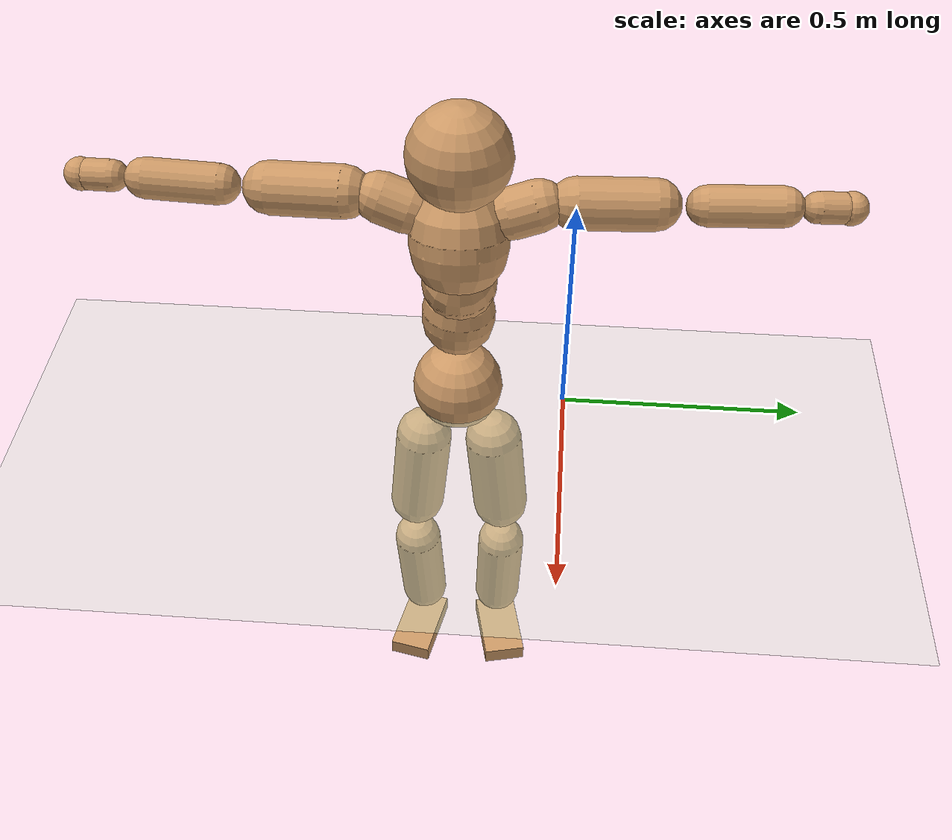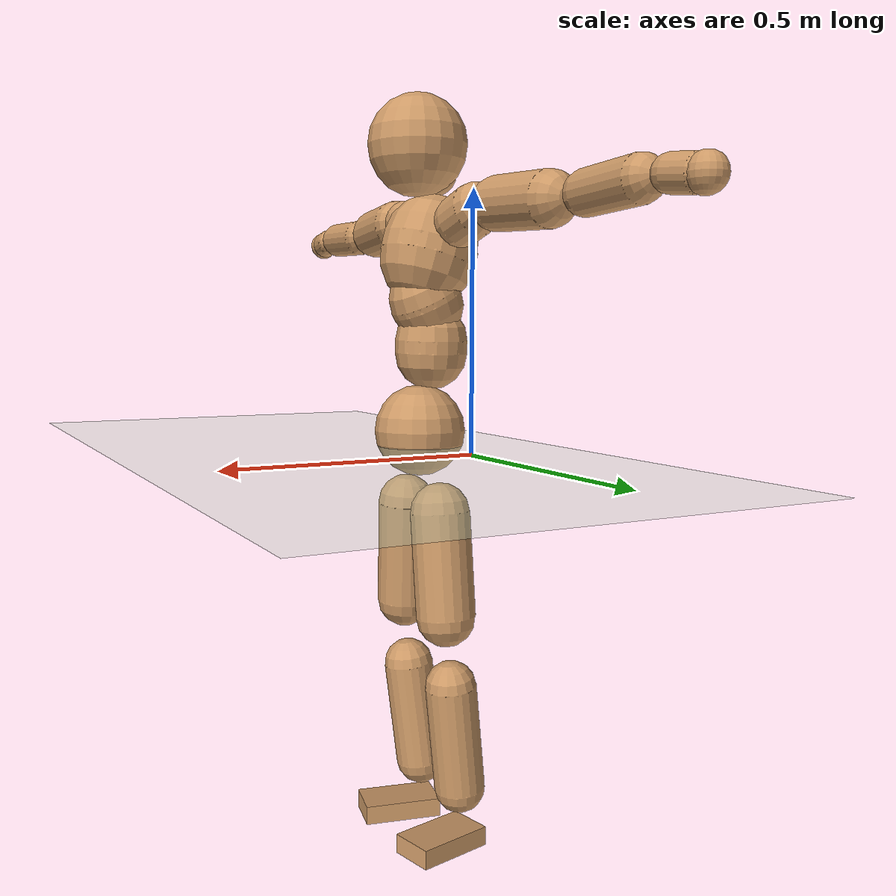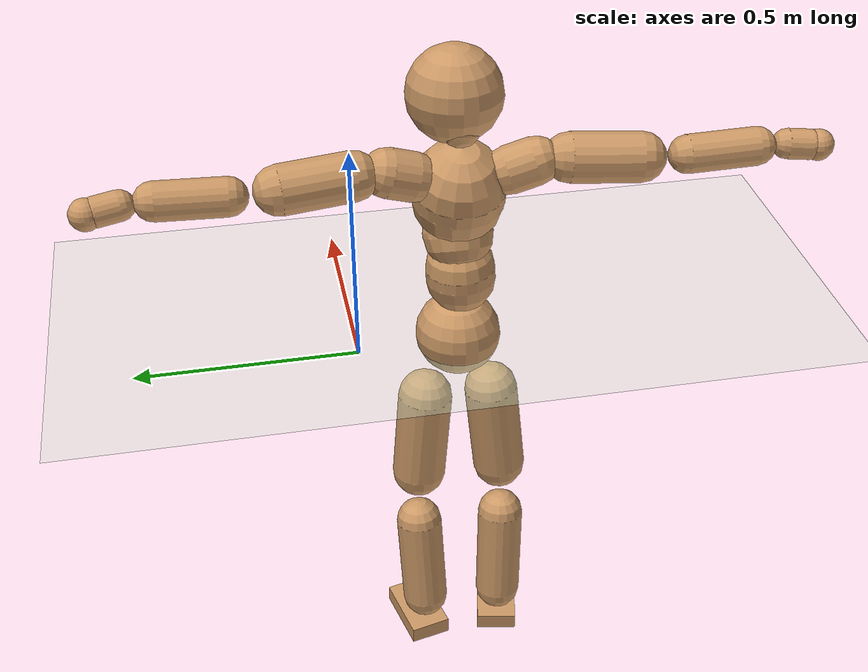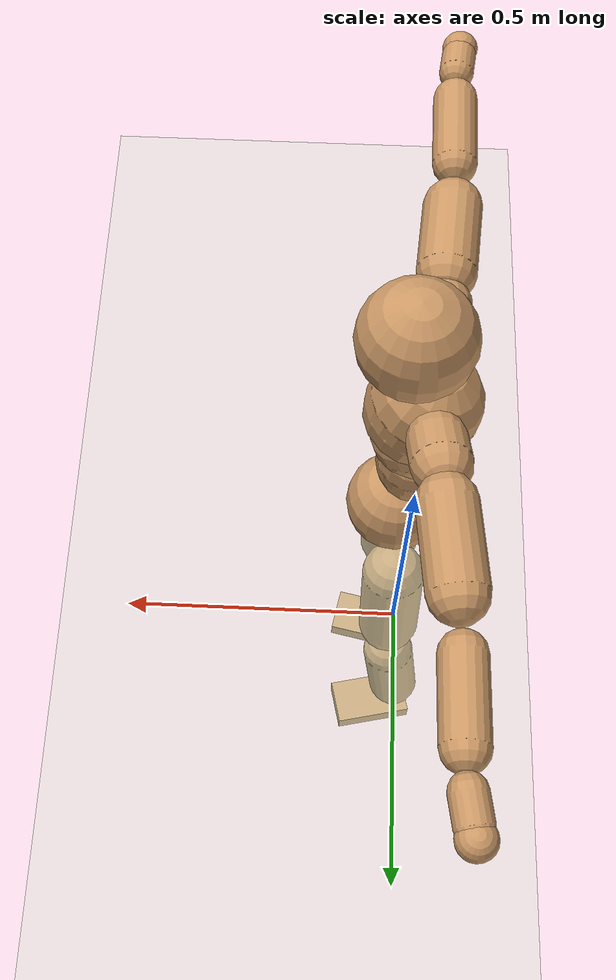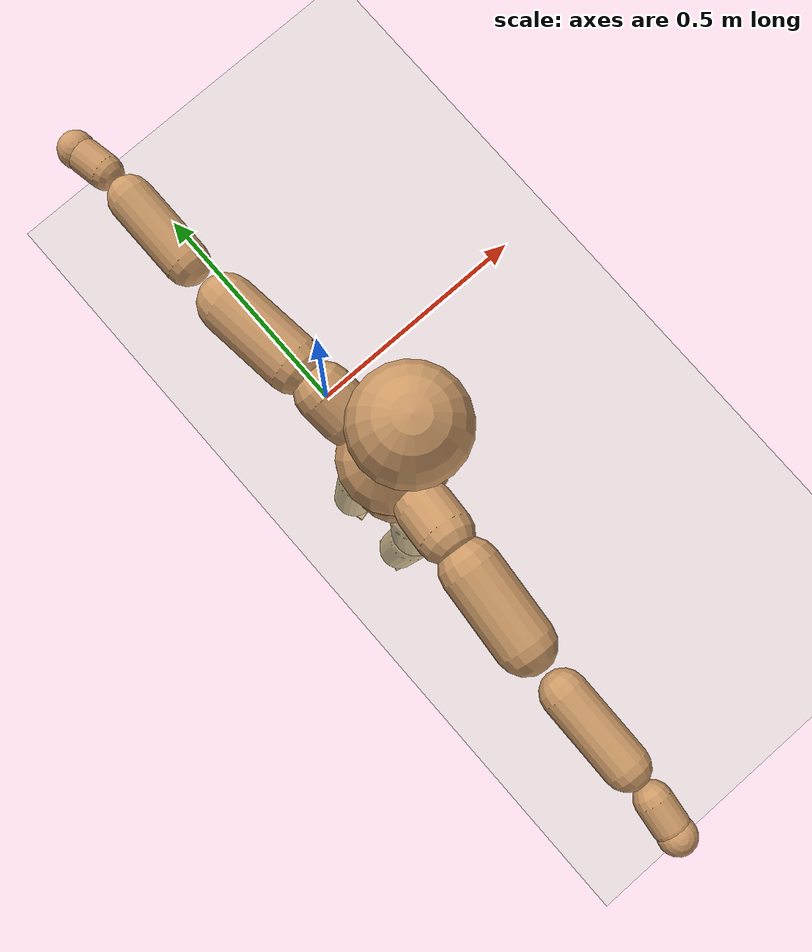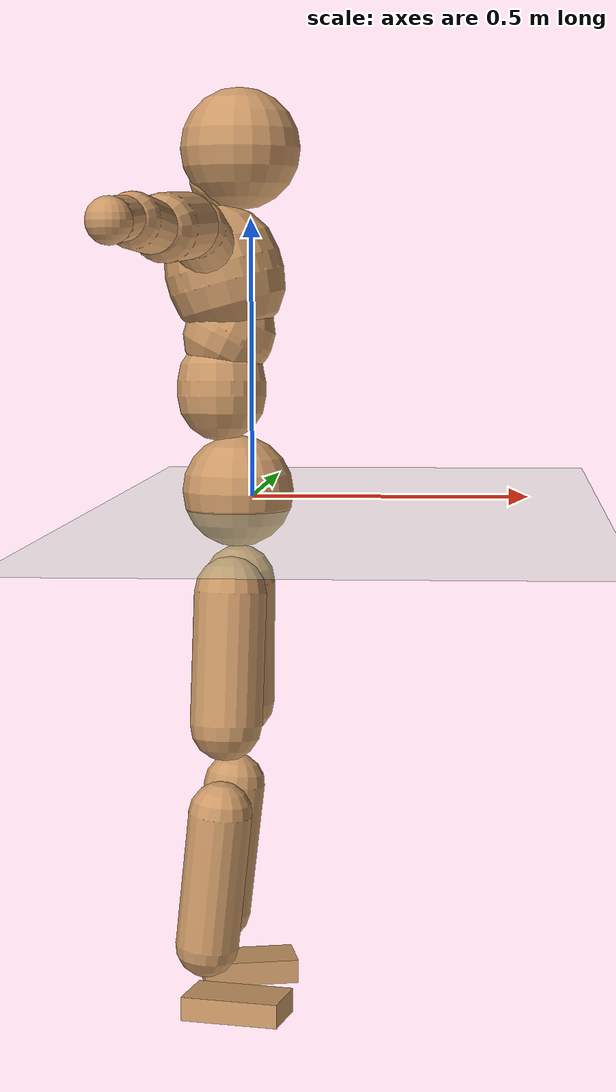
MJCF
<mujoco model="humanoid">
  <compiler coordinate="local"/>
  <default>
    <joint damping="0.0" armature="0.01" stiffness="0.0" limited="true"/>
    <geom conaffinity="1" condim="3" contype="7" margin="0.001" rgba="0.8 0.6 .4 1"/>
  </default>
  <asset>
    <texture type="skybox" builtin="gradient" rgb1=".4 .5 .6" rgb2="0 0 0" width="100" height="100"/>
    <texture builtin="flat" height="1278" mark="cross" markrgb="1 1 1" name="texgeom" random="0.01" rgb1="0.8 0.6 0.4" rgb2="0.8 0.6 0.4" type="cube" width="127"/>
    <texture builtin="checker" height="100" name="texplane" rgb1="0 0 0" rgb2="0.8 0.8 0.8" type="2d" width="100"/>
    <material name="MatPlane" reflectance="0.5" shininess="1" specular="1" texrepeat="60 60" texture="texplane"/>
    <material name="geom" texture="texgeom" texuniform="true"/>
  </asset>
  <worldbody>
    <light cutoff="100" diffuse="1 1 1" dir="-0 0 -1.3" directional="true" exponent="1" pos="0 0 1.3" specular=".1 .1 .1"/>
    <geom conaffinity="1" condim="3" name="floor" pos="0 0 0" rgba="0.8 0.9 0.8 1" size="100 100 .2" type="plane" material="MatPlane"/>
    <body name="Pelvis" pos="-0.0013 -0.2263 0.0299">
      <freejoint name="Pelvis"/>
      <geom type="sphere" contype="1" conaffinity="1" density="500" size="0.0959" pos="0.0000 0.0000 0.0000" name="Pelvis"/>
      <body name="L_Hip" pos="-0.0059 0.0718 -0.0915">
        <joint name="L_Hip_x" type="hinge" pos="0 0 0" axis="1 0 0" stiffness="800" damping="80" armature="0.02" range="-180.0000 180.0000"/>
        <joint name="L_Hip_y" type="hinge" pos="0 0 0" axis="0 1 0" stiffness="800" damping="80" armature="0.02" range="-180.0000 180.0000"/>
        <joint name="L_Hip_z" type="hinge" pos="0 0 0" axis="0 0 1" stiffness="800" damping="80" armature="0.02" range="-180.0000 180.0000"/>
        <geom type="capsule" contype="1" conaffinity="1" density="500" fromto="-0.0014 0.0063 -0.0733 -0.0056 0.0254 -0.2934" size="0.0623" name="L_Hip"/>
        <body name="L_Knee" pos="-0.007 0.0317 -0.3667">
          <joint name="L_Knee_x" type="hinge" pos="0 0 0" axis="1 0 0" stiffness="800" damping="80" armature="0.02" range="-180.0000 180.0000"/>
          <joint name="L_Knee_y" type="hinge" pos="0 0 0" axis="0 1 0" stiffness="800" damping="80" armature="0.02" range="-180.0000 180.0000"/>
          <joint name="L_Knee_z" type="hinge" pos="0 0 0" axis="0 0 1" stiffness="800" damping="80" armature="0.02" range="-180.0000 180.0000"/>
          <geom type="capsule" contype="1" conaffinity="1" density="500" fromto="-0.0088 -0.0026 -0.0776 -0.0353 -0.0103 -0.3105" size="0.0545" name="L_Knee"/>
          <body name="L_Ankle" pos="-0.0441 -0.0129 -0.3882">
            <joint name="L_Ankle_x" type="hinge" pos="0 0 0" axis="1 0 0" stiffness="800" damping="80" armature="0.02" range="-180.0000 180.0000"/>
            <joint name="L_Ankle_y" type="hinge" pos="0 0 0" axis="0 1 0" stiffness="800" damping="80" armature="0.02" range="-180.0000 180.0000"/>
            <joint name="L_Ankle_z" type="hinge" pos="0 0 0" axis="0 0 1" stiffness="800" damping="80" armature="0.02" range="-180.0000 180.0000"/>
            <geom type="box" contype="1" conaffinity="1" density="500" pos="0.0588 0.0134 -0.0277" size="0.084 0.0487 0.0207" quat="0.9938 0.0000 0.0000 0.1115" name="L_Ankle"/>
            <body name="L_Toe" pos="0.1176 0.0267 -0.0554">
              <joint name="L_Toe_x" type="hinge" pos="0 0 0" axis="1 0 0" stiffness="500" damping="50" armature="0.02" range="-180.0000 180.0000"/>
              <joint name="L_Toe_y" type="hinge" pos="0 0 0" axis="0 1 0" stiffness="500" damping="50" armature="0.02" range="-180.0000 180.0000"/>
              <joint name="L_Toe_z" type="hinge" pos="0 0 0" axis="0 0 1" stiffness="500" damping="50" armature="0.02" range="-180.0000 180.0000"/>
              <geom type="box" contype="1" conaffinity="1" density="500" pos="0.0000 0.0000 0.0271" size="0.001 0.0024 0.001" quat="0.9931 0.0000 0.0000 0.1176" name="L_Toe"/>
            </body>
          </body>
        </body>
      </body>
      <body name="R_Hip" pos="-0.0034 -0.0698 -0.0908">
        <joint name="R_Hip_x" type="hinge" pos="0 0 0" axis="1 0 0" stiffness="800" damping="80" armature="0.02" range="-180.0000 180.0000"/>
        <joint name="R_Hip_y" type="hinge" pos="0 0 0" axis="0 1 0" stiffness="800" damping="80" armature="0.02" range="-180.0000 180.0000"/>
        <joint name="R_Hip_z" type="hinge" pos="0 0 0" axis="0 0 1" stiffness="800" damping="80" armature="0.02" range="-180.0000 180.0000"/>
        <geom type="capsule" contype="1" conaffinity="1" density="500" fromto="-0.0021 -0.0073 -0.0747 -0.0084 -0.0291 -0.2989" size="0.0614" name="R_Hip"/>
        <body name="R_Knee" pos="-0.0105 -0.0364 -0.3736">
          <joint name="R_Knee_x" type="hinge" pos="0 0 0" axis="1 0 0" stiffness="800" damping="80" armature="0.02" range="-180.0000 180.0000"/>
          <joint name="R_Knee_y" type="hinge" pos="0 0 0" axis="0 1 0" stiffness="800" damping="80" armature="0.02" range="-180.0000 180.0000"/>
          <joint name="R_Knee_z" type="hinge" pos="0 0 0" axis="0 0 1" stiffness="800" damping="80" armature="0.02" range="-180.0000 180.0000"/>
          <geom type="capsule" contype="1" conaffinity="1" density="500" fromto="-0.0086 0.0030 -0.0778 -0.0343 0.0120 -0.3113" size="0.0546" name="R_Knee"/>
          <body name="R_Ankle" pos="-0.0429 0.015 -0.3891">
            <joint name="R_Ankle_x" type="hinge" pos="0 0 0" axis="1 0 0" stiffness="800" damping="80" armature="0.02" range="-180.0000 180.0000"/>
            <joint name="R_Ankle_y" type="hinge" pos="0 0 0" axis="0 1 0" stiffness="800" damping="80" armature="0.02" range="-180.0000 180.0000"/>
            <joint name="R_Ankle_z" type="hinge" pos="0 0 0" axis="0 0 1" stiffness="800" damping="80" armature="0.02" range="-180.0000 180.0000"/>
            <geom type="box" contype="1" conaffinity="1" density="500" pos="0.0609 -0.0127 -0.0238" size="0.0855 0.0483 0.0207" quat="0.9947 0.0000 0.0000 -0.1029" name="R_Ankle"/>
            <body name="R_Toe" pos="0.1218 -0.0255 -0.0476">
              <joint name="R_Toe_x" type="hinge" pos="0 0 0" axis="1 0 0" stiffness="500" damping="50" armature="0.02" range="-180.0000 180.0000"/>
              <joint name="R_Toe_y" type="hinge" pos="0 0 0" axis="0 1 0" stiffness="500" damping="50" armature="0.02" range="-180.0000 180.0000"/>
              <joint name="R_Toe_z" type="hinge" pos="0 0 0" axis="0 0 1" stiffness="500" damping="50" armature="0.02" range="-180.0000 180.0000"/>
              <geom type="box" contype="1" conaffinity="1" density="500" pos="0.0000 0.0000 0.0249" size="0.001 0.0024 0.0011" quat="0.9956 0.0000 0.0000 -0.0935" name="R_Toe"/>
            </body>
          </body>
        </body>
      </body>
      <body name="Torso" pos="-0.0272 -0.0025 0.1081">
        <joint name="Torso_x" type="hinge" pos="0 0 0" axis="1 0 0" stiffness="1000" damping="100" armature="0.02" range="-180.0000 180.0000"/>
        <joint name="Torso_y" type="hinge" pos="0 0 0" axis="0 1 0" stiffness="1000" damping="100" armature="0.02" range="-180.0000 180.0000"/>
        <joint name="Torso_z" type="hinge" pos="0 0 0" axis="0 0 1" stiffness="1000" damping="100" armature="0.02" range="-180.0000 180.0000"/>
        <geom type="capsule" contype="1" conaffinity="1" density="500" fromto="0.0001 0.0031 0.0799 0.0001 0.0020 0.0533" size="0.0761" name="Torso"/>
        <body name="Spine" pos="0.0002 0.0051 0.1331">
          <joint name="Spine_x" type="hinge" pos="0 0 0" axis="1 0 0" stiffness="1000" damping="100" armature="0.02" range="-180.0000 180.0000"/>
          <joint name="Spine_y" type="hinge" pos="0 0 0" axis="0 1 0" stiffness="1000" damping="100" armature="0.02" range="-180.0000 180.0000"/>
          <joint name="Spine_z" type="hinge" pos="0 0 0" axis="0 0 1" stiffness="1000" damping="100" armature="0.02" range="-180.0000 180.0000"/>
          <geom type="capsule" contype="1" conaffinity="1" density="500" fromto="0.0162 0.0008 0.0319 0.0108 0.0005 0.0213" size="0.0764" name="Spine"/>
          <body name="Chest" pos="0.0271 0.0014 0.0531">
            <joint name="Chest_x" type="hinge" pos="0 0 0" axis="1 0 0" stiffness="1000" damping="100" armature="0.02" range="-180.0000 180.0000"/>
            <joint name="Chest_y" type="hinge" pos="0 0 0" axis="0 1 0" stiffness="1000" damping="100" armature="0.02" range="-180.0000 180.0000"/>
            <joint name="Chest_z" type="hinge" pos="0 0 0" axis="0 0 1" stiffness="1000" damping="100" armature="0.02" range="-180.0000 180.0000"/>
            <geom type="capsule" contype="1" conaffinity="1" density="500" fromto="-0.0250 -0.0011 0.0926 -0.0166 -0.0007 0.0617" size="0.1" name="Chest"/>
            <body name="Neck" pos="-0.0463 -0.0025 0.2187">
              <joint name="Neck_x" type="hinge" pos="0 0 0" axis="1 0 0" stiffness="500" damping="50" armature="0.02" range="-180.0000 180.0000"/>
              <joint name="Neck_y" type="hinge" pos="0 0 0" axis="0 1 0" stiffness="500" damping="50" armature="0.02" range="-180.0000 180.0000"/>
              <joint name="Neck_z" type="hinge" pos="0 0 0" axis="0 0 1" stiffness="500" damping="50" armature="0.02" range="-180.0000 180.0000"/>
              <geom type="capsule" contype="1" conaffinity="1" density="500" fromto="0.0107 0.0009 0.0134 0.0426 0.0037 0.0536" size="0.0438" name="Neck"/>
              <body name="Head" pos="0.0533 0.0046 0.067">
                <joint name="Head_x" type="hinge" pos="0 0 0" axis="1 0 0" stiffness="500" damping="50" armature="0.02" range="-180.0000 180.0000"/>
                <joint name="Head_y" type="hinge" pos="0 0 0" axis="0 1 0" stiffness="500" damping="50" armature="0.02" range="-180.0000 180.0000"/>
                <joint name="Head_z" type="hinge" pos="0 0 0" axis="0 0 1" stiffness="500" damping="50" armature="0.02" range="-180.0000 180.0000"/>
                <geom type="sphere" contype="1" conaffinity="1" density="500" size="0.1024" pos="0.0000 0.0000 0.0000" name="Head"/>
              </body>
            </body>
            <body name="L_Thorax" pos="-0.0368 0.0791 0.1234">
              <joint name="L_Thorax_x" type="hinge" pos="0 0 0" axis="1 0 0" stiffness="500" damping="50" armature="0.02" range="-180.0000 180.0000"/>
              <joint name="L_Thorax_y" type="hinge" pos="0 0 0" axis="0 1 0" stiffness="500" damping="50" armature="0.02" range="-180.0000 180.0000"/>
              <joint name="L_Thorax_z" type="hinge" pos="0 0 0" axis="0 0 1" stiffness="500" damping="50" armature="0.02" range="-180.0000 180.0000"/>
              <geom type="capsule" contype="1" conaffinity="1" density="500" fromto="-0.0019 0.0181 0.0060 -0.0075 0.0725 0.0240" size="0.0526" name="L_Thorax"/>
              <body name="L_Shoulder" pos="-0.0094 0.0907 0.03">
                <joint name="L_Shoulder_x" type="hinge" pos="0 0 0" axis="1 0 0" stiffness="500" damping="50" armature="0.02" range="-720.0000 720.0000"/>
                <joint name="L_Shoulder_y" type="hinge" pos="0 0 0" axis="0 1 0" stiffness="500" damping="50" armature="0.02" range="-720.0000 720.0000"/>
                <joint name="L_Shoulder_z" type="hinge" pos="0 0 0" axis="0 0 1" stiffness="500" damping="50" armature="0.02" range="-720.0000 720.0000"/>
                <geom type="capsule" contype="1" conaffinity="1" density="500" fromto="-0.0055 0.0510 -0.0023 -0.0218 0.2042 -0.0091" size="0.0525" name="L_Shoulder"/>
                <body name="L_Elbow" pos="-0.0273 0.2552 -0.0113">
                  <joint name="L_Elbow_x" type="hinge" pos="0 0 0" axis="1 0 0" stiffness="500" damping="50" armature="0.02" range="-720.0000 720.0000"/>
                  <joint name="L_Elbow_y" type="hinge" pos="0 0 0" axis="0 1 0" stiffness="500" damping="50" armature="0.02" range="-720.0000 720.0000"/>
                  <joint name="L_Elbow_z" type="hinge" pos="0 0 0" axis="0 0 1" stiffness="500" damping="50" armature="0.02" range="-720.0000 720.0000"/>
                  <geom type="capsule" contype="1" conaffinity="1" density="500" fromto="-0.0001 0.0485 0.0017 -0.0004 0.1942 0.0070" size="0.0409" name="L_Elbow"/>
                  <body name="L_Wrist" pos="-0.0005 0.2427 0.0087">
                    <joint name="L_Wrist_x" type="hinge" pos="0 0 0" axis="1 0 0" stiffness="300" damping="30" armature="0.02" range="-180.0000 180.0000"/>
                    <joint name="L_Wrist_y" type="hinge" pos="0 0 0" axis="0 1 0" stiffness="300" damping="30" armature="0.02" range="-180.0000 180.0000"/>
                    <joint name="L_Wrist_z" type="hinge" pos="0 0 0" axis="0 0 1" stiffness="300" damping="30" armature="0.02" range="-180.0000 180.0000"/>
                    <geom type="capsule" contype="1" conaffinity="1" density="500" fromto="-0.0029 0.0166 -0.0017 -0.0115 0.0664 -0.0068" size="0.0316" name="L_Wrist"/>
                    <body name="L_Hand" pos="-0.0144 0.083 -0.0085">
                      <joint name="L_Hand_x" type="hinge" pos="0 0 0" axis="1 0 0" stiffness="300" damping="30" armature="0.02" range="-180.0000 180.0000"/>
                      <joint name="L_Hand_y" type="hinge" pos="0 0 0" axis="0 1 0" stiffness="300" damping="30" armature="0.02" range="-180.0000 180.0000"/>
                      <joint name="L_Hand_z" type="hinge" pos="0 0 0" axis="0 0 1" stiffness="300" damping="30" armature="0.02" range="-180.0000 180.0000"/>
                      <geom type="sphere" contype="1" conaffinity="1" density="500" size="0.0334" pos="0.0000 0.0000 0.0000" name="L_Hand"/>
                    </body>
                  </body>
                </body>
              </body>
            </body>
            <body name="R_Thorax" pos="-0.0417 -0.082 0.1207">
              <joint name="R_Thorax_x" type="hinge" pos="0 0 0" axis="1 0 0" stiffness="500" damping="50" armature="0.02" range="-180.0000 180.0000"/>
              <joint name="R_Thorax_y" type="hinge" pos="0 0 0" axis="0 1 0" stiffness="500" damping="50" armature="0.02" range="-180.0000 180.0000"/>
              <joint name="R_Thorax_z" type="hinge" pos="0 0 0" axis="0 0 1" stiffness="500" damping="50" armature="0.02" range="-180.0000 180.0000"/>
              <geom type="capsule" contype="1" conaffinity="1" density="500" fromto="-0.0020 -0.0191 0.0064 -0.0079 -0.0763 0.0257" size="0.0516" name="R_Thorax"/>
              <body name="R_Shoulder" pos="-0.0099 -0.0954 0.0321">
                <joint name="R_Shoulder_x" type="hinge" pos="0 0 0" axis="1 0 0" stiffness="500" damping="50" armature="0.02" range="-720.0000 720.0000"/>
                <joint name="R_Shoulder_y" type="hinge" pos="0 0 0" axis="0 1 0" stiffness="500" damping="50" armature="0.02" range="-720.0000 720.0000"/>
                <joint name="R_Shoulder_z" type="hinge" pos="0 0 0" axis="0 0 1" stiffness="500" damping="50" armature="0.02" range="-720.0000 720.0000"/>
                <geom type="capsule" contype="1" conaffinity="1" density="500" fromto="-0.0043 -0.0500 -0.0026 -0.0173 -0.1998 -0.0103" size="0.054" name="R_Shoulder"/>
                <body name="R_Elbow" pos="-0.0216 -0.2498 -0.0128">
                  <joint name="R_Elbow_x" type="hinge" pos="0 0 0" axis="1 0 0" stiffness="500" damping="50" armature="0.02" range="-720.0000 720.0000"/>
                  <joint name="R_Elbow_y" type="hinge" pos="0 0 0" axis="0 1 0" stiffness="500" damping="50" armature="0.02" range="-720.0000 720.0000"/>
                  <joint name="R_Elbow_z" type="hinge" pos="0 0 0" axis="0 0 1" stiffness="500" damping="50" armature="0.02" range="-720.0000 720.0000"/>
                  <geom type="capsule" contype="1" conaffinity="1" density="500" fromto="-0.0009 -0.0499 0.0017 -0.0035 -0.1995 0.0066" size="0.0413" name="R_Elbow"/>
                  <body name="R_Wrist" pos="-0.0043 -0.2494 0.0083">
                    <joint name="R_Wrist_x" type="hinge" pos="0 0 0" axis="1 0 0" stiffness="300" damping="30" armature="0.02" range="-180.0000 180.0000"/>
                    <joint name="R_Wrist_y" type="hinge" pos="0 0 0" axis="0 1 0" stiffness="300" damping="30" armature="0.02" range="-180.0000 180.0000"/>
                    <joint name="R_Wrist_z" type="hinge" pos="0 0 0" axis="0 0 1" stiffness="300" damping="30" armature="0.02" range="-180.0000 180.0000"/>
                    <geom type="capsule" contype="1" conaffinity="1" density="500" fromto="-0.0021 -0.0167 -0.0013 -0.0083 -0.0670 -0.0051" size="0.0324" name="R_Wrist"/>
                    <body name="R_Hand" pos="-0.0103 -0.0837 -0.0064">
                      <joint name="R_Hand_x" type="hinge" pos="0 0 0" axis="1 0 0" stiffness="300" damping="30" armature="0.02" range="-180.0000 180.0000"/>
                      <joint name="R_Hand_y" type="hinge" pos="0 0 0" axis="0 1 0" stiffness="300" damping="30" armature="0.02" range="-180.0000 180.0000"/>
                      <joint name="R_Hand_z" type="hinge" pos="0 0 0" axis="0 0 1" stiffness="300" damping="30" armature="0.02" range="-180.0000 180.0000"/>
                      <geom type="sphere" contype="1" conaffinity="1" density="500" size="0.0337" pos="0.0000 0.0000 0.0000" name="R_Hand"/>
                    </body>
                  </body>
                </body>
              </body>
            </body>
          </body>
        </body>
      </body>
    </body>
  </worldbody>
  <actuator>
    <motor name="L_Hip_x" joint="L_Hip_x" gear="500"/>
    <motor name="L_Hip_y" joint="L_Hip_y" gear="500"/>
    <motor name="L_Hip_z" joint="L_Hip_z" gear="500"/>
    <motor name="L_Knee_x" joint="L_Knee_x" gear="500"/>
    <motor name="L_Knee_y" joint="L_Knee_y" gear="500"/>
    <motor name="L_Knee_z" joint="L_Knee_z" gear="500"/>
    <motor name="L_Ankle_x" joint="L_Ankle_x" gear="500"/>
    <motor name="L_Ankle_y" joint="L_Ankle_y" gear="500"/>
    <motor name="L_Ankle_z" joint="L_Ankle_z" gear="500"/>
    <motor name="L_Toe_x" joint="L_Toe_x" gear="500"/>
    <motor name="L_Toe_y" joint="L_Toe_y" gear="500"/>
    <motor name="L_Toe_z" joint="L_Toe_z" gear="500"/>
    <motor name="R_Hip_x" joint="R_Hip_x" gear="500"/>
    <motor name="R_Hip_y" joint="R_Hip_y" gear="500"/>
    <motor name="R_Hip_z" joint="R_Hip_z" gear="500"/>
    <motor name="R_Knee_x" joint="R_Knee_x" gear="500"/>
    <motor name="R_Knee_y" joint="R_Knee_y" gear="500"/>
    <motor name="R_Knee_z" joint="R_Knee_z" gear="500"/>
    <motor name="R_Ankle_x" joint="R_Ankle_x" gear="500"/>
    <motor name="R_Ankle_y" joint="R_Ankle_y" gear="500"/>
    <motor name="R_Ankle_z" joint="R_Ankle_z" gear="500"/>
    <motor name="R_Toe_x" joint="R_Toe_x" gear="500"/>
    <motor name="R_Toe_y" joint="R_Toe_y" gear="500"/>
    <motor name="R_Toe_z" joint="R_Toe_z" gear="500"/>
    <motor name="Torso_x" joint="Torso_x" gear="500"/>
    <motor name="Torso_y" joint="Torso_y" gear="500"/>
    <motor name="Torso_z" joint="Torso_z" gear="500"/>
    <motor name="Spine_x" joint="Spine_x" gear="500"/>
    <motor name="Spine_y" joint="Spine_y" gear="500"/>
    <motor name="Spine_z" joint="Spine_z" gear="500"/>
    <motor name="Chest_x" joint="Chest_x" gear="500"/>
    <motor name="Chest_y" joint="Chest_y" gear="500"/>
    <motor name="Chest_z" joint="Chest_z" gear="500"/>
    <motor name="Neck_x" joint="Neck_x" gear="500"/>
    <motor name="Neck_y" joint="Neck_y" gear="500"/>
    <motor name="Neck_z" joint="Neck_z" gear="500"/>
    <motor name="Head_x" joint="Head_x" gear="500"/>
    <motor name="Head_y" joint="Head_y" gear="500"/>
    <motor name="Head_z" joint="Head_z" gear="500"/>
    <motor name="L_Thorax_x" joint="L_Thorax_x" gear="500"/>
    <motor name="L_Thorax_y" joint="L_Thorax_y" gear="500"/>
    <motor name="L_Thorax_z" joint="L_Thorax_z" gear="500"/>
    <motor name="L_Shoulder_x" joint="L_Shoulder_x" gear="500"/>
    <motor name="L_Shoulder_y" joint="L_Shoulder_y" gear="500"/>
    <motor name="L_Shoulder_z" joint="L_Shoulder_z" gear="500"/>
    <motor name="L_Elbow_x" joint="L_Elbow_x" gear="500"/>
    <motor name="L_Elbow_y" joint="L_Elbow_y" gear="500"/>
    <motor name="L_Elbow_z" joint="L_Elbow_z" gear="500"/>
    <motor name="L_Wrist_x" joint="L_Wrist_x" gear="500"/>
    <motor name="L_Wrist_y" joint="L_Wrist_y" gear="500"/>
    <motor name="L_Wrist_z" joint="L_Wrist_z" gear="500"/>
    <motor name="L_Hand_x" joint="L_Hand_x" gear="500"/>
    <motor name="L_Hand_y" joint="L_Hand_y" gear="500"/>
    <motor name="L_Hand_z" joint="L_Hand_z" gear="500"/>
    <motor name="R_Thorax_x" joint="R_Thorax_x" gear="500"/>
    <motor name="R_Thorax_y" joint="R_Thorax_y" gear="500"/>
    <motor name="R_Thorax_z" joint="R_Thorax_z" gear="500"/>
    <motor name="R_Shoulder_x" joint="R_Shoulder_x" gear="500"/>
    <motor name="R_Shoulder_y" joint="R_Shoulder_y" gear="500"/>
    <motor name="R_Shoulder_z" joint="R_Shoulder_z" gear="500"/>
    <motor name="R_Elbow_x" joint="R_Elbow_x" gear="500"/>
    <motor name="R_Elbow_y" joint="R_Elbow_y" gear="500"/>
    <motor name="R_Elbow_z" joint="R_Elbow_z" gear="500"/>
    <motor name="R_Wrist_x" joint="R_Wrist_x" gear="500"/>
    <motor name="R_Wrist_y" joint="R_Wrist_y" gear="500"/>
    <motor name="R_Wrist_z" joint="R_Wrist_z" gear="500"/>
    <motor name="R_Hand_x" joint="R_Hand_x" gear="500"/>
    <motor name="R_Hand_y" joint="R_Hand_y" gear="500"/>
    <motor name="R_Hand_z" joint="R_Hand_z" gear="500"/>
  </actuator>
  <contact>
    <exclude body1="Torso" body2="Chest"/>
    <exclude body1="Head" body2="Chest"/>
    <exclude body1="R_Knee" body2="R_Toe"/>
    <exclude body1="R_Knee" body2="L_Ankle"/>
    <exclude body1="R_Knee" body2="L_Toe"/>
    <exclude body1="L_Knee" body2="L_Toe"/>
    <exclude body1="L_Knee" body2="R_Ankle"/>
    <exclude body1="L_Knee" body2="R_Toe"/>
    <exclude body1="L_Shoulder" body2="Chest"/>
    <exclude body1="R_Shoulder" body2="Chest"/>
  </contact>
  <sensor/>
  <size njmax="700" nconmax="700"/>
</mujoco>
